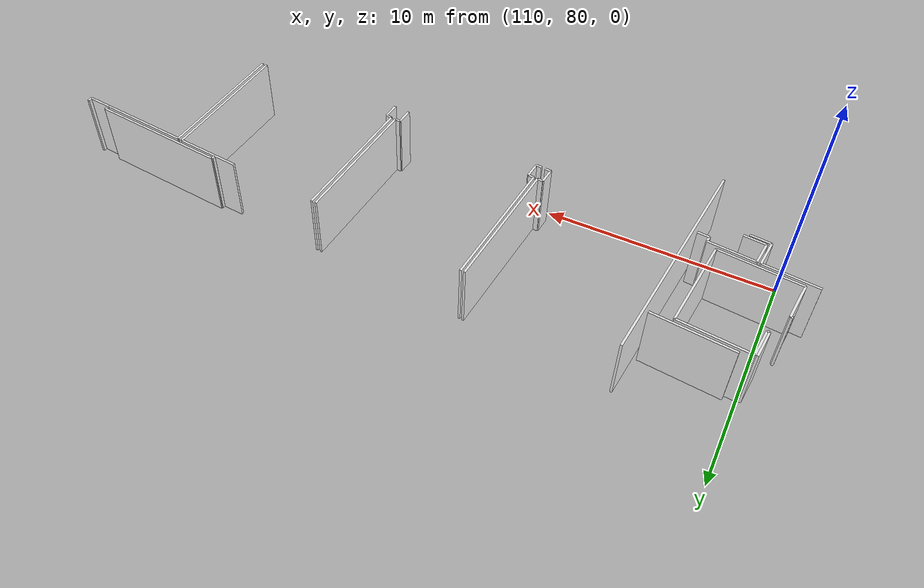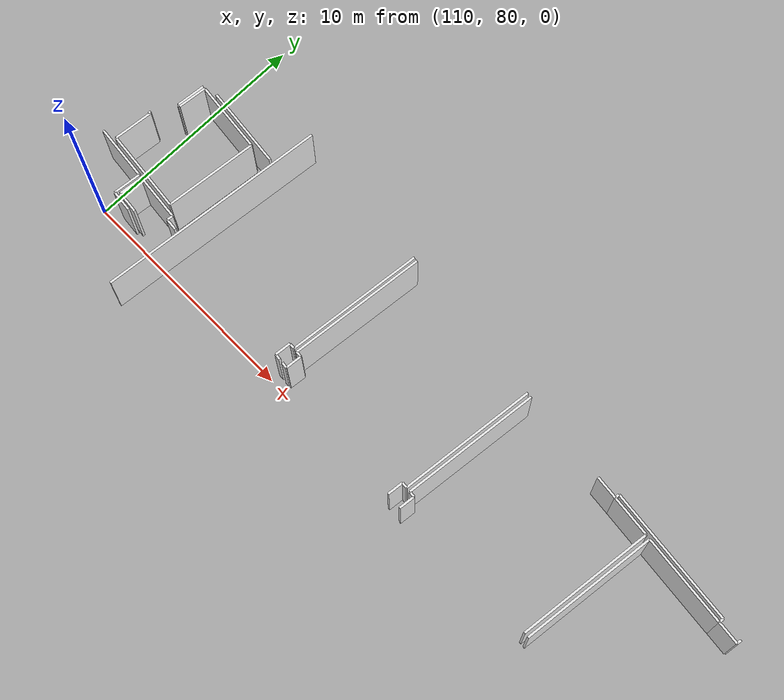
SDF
<sdf version="1.6">
 <world name="default">
  <model name="wall_134.8_82.6_1.5">
   <static>true</static>
   <pose>134.79000000000815 82.63500000000931 1.5 0 0 1.4692789369105257</pose>
   <link name="link">
    <visual name="visual">
     <geometry><box><size>5.920481399479087 0.1 3</size></box></geometry>
     <material>
      <script><uri>file://media/materials/scripts/gazebo.material</uri><name>Gazebo/White</name></script>
     </material>
    </visual>
    <collision name="collision"><geometry><box><size>5.920481399479087 0.1 3</size></box></geometry></collision>
   </link>
  </model>
  <model name="wall_137.1_85.4_1.5">
   <static>true</static>
   <pose>137.07000000000698 85.38000000012107 1.5 0 0 -0.10066865213548881</pose>
   <link name="link">
    <visual name="visual">
     <geometry><box><size>3.9801507508674154 0.1 3</size></box></geometry>
     <material>
      <script><uri>file://media/materials/scripts/gazebo.material</uri><name>Gazebo/White</name></script>
     </material>
    </visual>
    <collision name="collision"><geometry><box><size>3.9801507508674154 0.1 3</size></box></geometry></collision>
   </link>
  </model>
  <model name="wall_139.5_85.1_1.5">
   <static>true</static>
   <pose>139.54999999998836 85.13000000012107 1.5 0 0 -0.09966865258337218</pose>
   <link name="link">
    <visual name="visual">
     <geometry><box><size>1.004987562121356 0.1 3</size></box></geometry>
     <material>
      <script><uri>file://media/materials/scripts/gazebo.material</uri><name>Gazebo/White</name></script>
     </material>
    </visual>
    <collision name="collision"><geometry><box><size>1.004987562121356 0.1 3</size></box></geometry></collision>
   </link>
  </model>
  <model name="wall_134.6_82.7_1.5">
   <static>true</static>
   <pose>134.5800000000163 82.65999999991618 1.5 0 0 1.4694498235315459</pose>
   <link name="link">
    <visual name="visual">
     <geometry><box><size>5.9304300011780855 0.1 3</size></box></geometry>
     <material>
      <script><uri>file://media/materials/scripts/gazebo.material</uri><name>Gazebo/White</name></script>
     </material>
    </visual>
    <collision name="collision"><geometry><box><size>5.9304300011780855 0.1 3</size></box></geometry></collision>
   </link>
  </model>
  <model name="wall_134.0_85.7_1.5">
   <static>true</static>
   <pose>133.98000000001048 85.69999999995343 1.5 0 0 3.0419240010057806</pose>
   <link name="link">
    <visual name="visual">
     <geometry><box><size>1.808977611806857 0.1 3</size></box></geometry>
     <material>
      <script><uri>file://media/materials/scripts/gazebo.material</uri><name>Gazebo/White</name></script>
     </material>
    </visual>
    <collision name="collision"><geometry><box><size>1.808977611806857 0.1 3</size></box></geometry></collision>
   </link>
  </model>
  <model name="wall_132.6_85.8_1.5">
   <static>true</static>
   <pose>132.5800000000163 85.84000000008382 1.5 0 0 3.041924001006421</pose>
   <link name="link">
    <visual name="visual">
     <geometry><box><size>1.004987562121356 0.1 3</size></box></geometry>
     <material>
      <script><uri>file://media/materials/scripts/gazebo.material</uri><name>Gazebo/White</name></script>
     </material>
    </visual>
    <collision name="collision"><geometry><box><size>1.004987562121356 0.1 3</size></box></geometry></collision>
   </link>
  </model>
  <model name="wall_127.8_83.3_1.5">
   <static>true</static>
   <pose>127.79999999998836 83.34499999997206 1.5 0 0 -1.6719725158339418</pose>
   <link name="link">
    <visual name="visual">
     <geometry><box><size>5.940378775484714 0.1 3</size></box></geometry>
     <material>
      <script><uri>file://media/materials/scripts/gazebo.material</uri><name>Gazebo/White</name></script>
     </material>
    </visual>
    <collision name="collision"><geometry><box><size>5.940378775484714 0.1 3</size></box></geometry></collision>
   </link>
  </model>
  <model name="wall_127.6_80.4_1.5">
   <static>true</static>
   <pose>127.625 80.375 1.5 0 0 -0.11942892704661259</pose>
   <link name="link">
    <visual name="visual">
     <geometry><box><size>0.25179356627135296 0.1 3</size></box></geometry>
     <material>
      <script><uri>file://media/materials/scripts/gazebo.material</uri><name>Gazebo/White</name></script>
     </material>
    </visual>
    <collision name="collision"><geometry><box><size>0.25179356627135296 0.1 3</size></box></geometry></collision>
   </link>
  </model>
  <model name="wall_127.7_80.0_1.5">
   <static>true</static>
   <pose>127.71499999999651 80.01499999989755 1.5 0 0 -1.6718996985493473</pose>
   <link name="link">
    <visual name="visual">
     <geometry><box><size>0.693541635321099 0.1 3</size></box></geometry>
     <material>
      <script><uri>file://media/materials/scripts/gazebo.material</uri><name>Gazebo/White</name></script>
     </material>
    </visual>
    <collision name="collision"><geometry><box><size>0.693541635321099 0.1 3</size></box></geometry></collision>
   </link>
  </model>
  <model name="wall_113.3_81.1_1.5">
   <static>true</static>
   <pose>113.2949999999837 81.125 1.5 0 0 3.0438657465945953</pose>
   <link name="link">
    <visual name="visual">
     <geometry><box><size>0.512445119003853 0.1 3</size></box></geometry>
     <material>
      <script><uri>file://media/materials/scripts/gazebo.material</uri><name>Gazebo/White</name></script>
     </material>
    </visual>
    <collision name="collision"><geometry><box><size>0.512445119003853 0.1 3</size></box></geometry></collision>
   </link>
  </model>
  <model name="wall_113.1_81.3_1.5">
   <static>true</static>
   <pose>113.05499999999302 81.27499999990687 1.5 0 0 1.451367400666386</pose>
   <link name="link">
    <visual name="visual">
     <geometry><box><size>0.2517935662436123 0.1 3</size></box></geometry>
     <material>
      <script><uri>file://media/materials/scripts/gazebo.material</uri><name>Gazebo/White</name></script>
     </material>
    </visual>
    <collision name="collision"><geometry><box><size>0.2517935662436123 0.1 3</size></box></geometry></collision>
   </link>
  </model>
  <model name="wall_112.1_81.5_1.5">
   <static>true</static>
   <pose>112.05000000001746 81.5 1.5 0 0 3.04386574613964</pose>
   <link name="link">
    <visual name="visual">
     <geometry><box><size>2.0497804760483525 0.1 3</size></box></geometry>
     <material>
      <script><uri>file://media/materials/scripts/gazebo.material</uri><name>Gazebo/White</name></script>
     </material>
    </visual>
    <collision name="collision"><geometry><box><size>2.0497804760483525 0.1 3</size></box></geometry></collision>
   </link>
  </model>
  <model name="wall_111.0_81.1_1.5">
   <static>true</static>
   <pose>110.97500000000582 81.0800000000745 1.5 0 0 -1.676173766022158</pose>
   <link name="link">
    <visual name="visual">
     <geometry><box><size>1.0458011283639057 0.1 3</size></box></geometry>
     <material>
      <script><uri>file://media/materials/scripts/gazebo.material</uri><name>Gazebo/White</name></script>
     </material>
    </visual>
    <collision name="collision"><geometry><box><size>1.0458011283639057 0.1 3</size></box></geometry></collision>
   </link>
  </model>
  <model name="wall_111.4_80.5_1.5">
   <static>true</static>
   <pose>111.39499999998952 80.51500000013039 1.5 0 0 -0.09445493523843698</pose>
   <link name="link">
    <visual name="visual">
     <geometry><box><size>0.9542536350443193 0.1 3</size></box></geometry>
     <material>
      <script><uri>file://media/materials/scripts/gazebo.material</uri><name>Gazebo/White</name></script>
     </material>
    </visual>
    <collision name="collision"><geometry><box><size>0.9542536350443193 0.1 3</size></box></geometry></collision>
   </link>
  </model>
  <model name="wall_109.7_81.7_1.5">
   <static>true</static>
   <pose>109.6699999999837 81.73999999999069 1.5 0 0 3.041924001199486</pose>
   <link name="link">
    <visual name="visual">
     <geometry><box><size>2.411970149068087 0.1 3</size></box></geometry>
     <material>
      <script><uri>file://media/materials/scripts/gazebo.material</uri><name>Gazebo/White</name></script>
     </material>
    </visual>
    <collision name="collision"><geometry><box><size>2.411970149068087 0.1 3</size></box></geometry></collision>
   </link>
  </model>
  <model name="wall_111.2_80.4_1.5">
   <static>true</static>
   <pose>111.20000000001164 80.38500000000931 1.5 0 0 3.041924000752843</pose>
   <link name="link">
    <visual name="visual">
     <geometry><box><size>0.9044888059555555 0.1 3</size></box></geometry>
     <material>
      <script><uri>file://media/materials/scripts/gazebo.material</uri><name>Gazebo/White</name></script>
     </material>
    </visual>
    <collision name="collision"><geometry><box><size>0.9044888059555555 0.1 3</size></box></geometry></collision>
   </link>
  </model>
  <model name="wall_110.8_81.0_1.5">
   <static>true</static>
   <pose>110.80999999999767 81.0250000001397 1.5 0 0 1.470295727739453</pose>
   <link name="link">
    <visual name="visual">
     <geometry><box><size>1.1960351164852516 0.1 3</size></box></geometry>
     <material>
      <script><uri>file://media/materials/scripts/gazebo.material</uri><name>Gazebo/White</name></script>
     </material>
    </visual>
    <collision name="collision"><geometry><box><size>1.1960351164852516 0.1 3</size></box></geometry></collision>
   </link>
  </model>
  <model name="wall_109.8_85.4_1.5">
   <static>true</static>
   <pose>109.79999999998836 85.36500000022352 1.5 0 0 -1.666503034878009</pose>
   <link name="link">
    <visual name="visual">
     <geometry><box><size>1.2557467897625232 0.1 3</size></box></geometry>
     <material>
      <script><uri>file://media/materials/scripts/gazebo.material</uri><name>Gazebo/White</name></script>
     </material>
    </visual>
    <collision name="collision"><geometry><box><size>1.2557467897625232 0.1 3</size></box></geometry></collision>
   </link>
  </model>
  <model name="wall_109.8_84.7_1.5">
   <static>true</static>
   <pose>109.78500000000349 84.73500000010245 1.5 0 0 -0.11065722380033888</pose>
   <link name="link">
    <visual name="visual">
     <geometry><box><size>0.0905538514335692 0.1 3</size></box></geometry>
     <material>
      <script><uri>file://media/materials/scripts/gazebo.material</uri><name>Gazebo/White</name></script>
     </material>
    </visual>
    <collision name="collision"><geometry><box><size>0.0905538514335692 0.1 3</size></box></geometry></collision>
   </link>
  </model>
  <model name="wall_109.9_85.4_1.5">
   <static>true</static>
   <pose>109.89500000001863 85.35499999998137 1.5 0 0 1.4671688667943394</pose>
   <link name="link">
    <visual name="visual">
     <geometry><box><size>1.2567418191503021 0.1 3</size></box></geometry>
     <material>
      <script><uri>file://media/materials/scripts/gazebo.material</uri><name>Gazebo/White</name></script>
     </material>
    </visual>
    <collision name="collision"><geometry><box><size>1.2567418191503021 0.1 3</size></box></geometry></collision>
   </link>
  </model>
  <model name="wall_111.5_85.8_1.5">
   <static>true</static>
   <pose>111.50500000000466 85.82000000006519 1.5 0 0 -0.10319202030580511</pose>
   <link name="link">
    <visual name="visual">
     <geometry><box><size>3.1065253901571874 0.1 3</size></box></geometry>
     <material>
      <script><uri>file://media/materials/scripts/gazebo.material</uri><name>Gazebo/White</name></script>
     </material>
    </visual>
    <collision name="collision"><geometry><box><size>3.1065253901571874 0.1 3</size></box></geometry></collision>
   </link>
  </model>
  <model name="wall_112.8_83.7_1.5">
   <static>true</static>
   <pose>112.84500000000116 83.65500000002794 1.5 0 0 -1.6726866492791923</pose>
   <link name="link">
    <visual name="visual">
     <geometry><box><size>4.0309056056823005 0.1 3</size></box></geometry>
     <material>
      <script><uri>file://media/materials/scripts/gazebo.material</uri><name>Gazebo/White</name></script>
     </material>
    </visual>
    <collision name="collision"><geometry><box><size>4.0309056056823005 0.1 3</size></box></geometry></collision>
   </link>
  </model>
  <model name="wall_110.9_81.8_1.5">
   <static>true</static>
   <pose>110.85000000000582 81.82999999984168 1.5 0 0 3.041370903846408</pose>
   <link name="link">
    <visual name="visual">
     <geometry><box><size>3.5980550301548777 0.1 3</size></box></geometry>
     <material>
      <script><uri>file://media/materials/scripts/gazebo.material</uri><name>Gazebo/White</name></script>
     </material>
    </visual>
    <collision name="collision"><geometry><box><size>3.5980550301548777 0.1 3</size></box></geometry></collision>
   </link>
  </model>
  <model name="wall_109.1_82.9_1.5">
   <static>true</static>
   <pose>109.14499999998952 82.85499999998137 1.5 0 0 1.470541851323015</pose>
   <link name="link">
    <visual name="visual">
     <geometry><box><size>1.698528775552396 0.1 3</size></box></geometry>
     <material>
      <script><uri>file://media/materials/scripts/gazebo.material</uri><name>Gazebo/White</name></script>
     </material>
    </visual>
    <collision name="collision"><geometry><box><size>1.698528775552396 0.1 3</size></box></geometry></collision>
   </link>
  </model>
  <model name="wall_109.2_83.7_1.5">
   <static>true</static>
   <pose>109.17999999999302 83.7050000000745 1.5 0 0 3.0419240032886226</pose>
   <link name="link">
    <visual name="visual">
     <geometry><box><size>0.10049875616580058 0.1 3</size></box></geometry>
     <material>
      <script><uri>file://media/materials/scripts/gazebo.material</uri><name>Gazebo/White</name></script>
     </material>
    </visual>
    <collision name="collision"><geometry><box><size>0.10049875616580058 0.1 3</size></box></geometry></collision>
   </link>
  </model>
  <model name="wall_112.3_85.9_1.5">
   <static>true</static>
   <pose>112.25500000000466 85.94999999995343 1.5 0 0 3.039961019922028</pose>
   <link name="link">
    <visual name="visual">
     <geometry><box><size>3.548309456643174 0.1 3</size></box></geometry>
     <material>
      <script><uri>file://media/materials/scripts/gazebo.material</uri><name>Gazebo/White</name></script>
     </material>
    </visual>
    <collision name="collision"><geometry><box><size>3.548309456643174 0.1 3</size></box></geometry></collision>
   </link>
  </model>
  <model name="wall_127.0_80.1_1.5">
   <static>true</static>
   <pose>127.02499999999418 80.08500000019558 1.5 0 0 1.469692955040446</pose>
   <link name="link">
    <visual name="visual">
     <geometry><box><size>0.693541635321099 0.1 3</size></box></geometry>
     <material>
      <script><uri>file://media/materials/scripts/gazebo.material</uri><name>Gazebo/White</name></script>
     </material>
    </visual>
    <collision name="collision"><geometry><box><size>0.693541635321099 0.1 3</size></box></geometry></collision>
   </link>
  </model>
  <model name="wall_127.2_80.4_1.5">
   <static>true</static>
   <pose>127.17999999999302 80.42000000015832 1.5 0 0 -0.08314123196872766</pose>
   <link name="link">
    <visual name="visual">
     <geometry><box><size>0.2408318915681117 0.1 3</size></box></geometry>
     <material>
      <script><uri>file://media/materials/scripts/gazebo.material</uri><name>Gazebo/White</name></script>
     </material>
    </visual>
    <collision name="collision"><geometry><box><size>0.2408318915681117 0.1 3</size></box></geometry></collision>
   </link>
  </model>
  <model name="wall_127.6_83.4_1.5">
   <static>true</static>
   <pose>127.60000000000582 83.36499999999069 1.5 0 0 1.469620137746103</pose>
   <link name="link">
    <visual name="visual">
     <geometry><box><size>5.940378775490593 0.1 3</size></box></geometry>
     <material>
      <script><uri>file://media/materials/scripts/gazebo.material</uri><name>Gazebo/White</name></script>
     </material>
    </visual>
    <collision name="collision"><geometry><box><size>5.940378775490593 0.1 3</size></box></geometry></collision>
   </link>
  </model>
  <model name="wall_120.8_84.0_1.5">
   <static>true</static>
   <pose>120.82000000000698 84.0449999999255 1.5 0 0 -1.6719725158260241</pose>
   <link name="link">
    <visual name="visual">
     <geometry><box><size>5.940378775947993 0.1 3</size></box></geometry>
     <material>
      <script><uri>file://media/materials/scripts/gazebo.material</uri><name>Gazebo/White</name></script>
     </material>
    </visual>
    <collision name="collision"><geometry><box><size>5.940378775947993 0.1 3</size></box></geometry></collision>
   </link>
  </model>
  <model name="wall_120.6_81.1_1.5">
   <static>true</static>
   <pose>120.64500000001863 81.07999999984168 1.5 0 0 -0.07982998578626932</pose>
   <link name="link">
    <visual name="visual">
     <geometry><box><size>0.25079872408117443 0.1 3</size></box></geometry>
     <material>
      <script><uri>file://media/materials/scripts/gazebo.material</uri><name>Gazebo/White</name></script>
     </material>
    </visual>
    <collision name="collision"><geometry><box><size>0.25079872408117443 0.1 3</size></box></geometry></collision>
   </link>
  </model>
  <model name="wall_120.7_80.7_1.5">
   <static>true</static>
   <pose>120.73500000001513 80.71999999997206 1.5 0 0 -1.670464979335457</pose>
   <link name="link">
    <visual name="visual">
     <geometry><box><size>0.7034912932011471 0.1 3</size></box></geometry>
     <material>
      <script><uri>file://media/materials/scripts/gazebo.material</uri><name>Gazebo/White</name></script>
     </material>
    </visual>
    <collision name="collision"><geometry><box><size>0.7034912932011471 0.1 3</size></box></geometry></collision>
   </link>
  </model>
  <model name="wall_120.6_80.4_1.5">
   <static>true</static>
   <pose>120.57500000001164 80.38500000000931 1.5 0 0 3.0221637283793843</pose>
   <link name="link">
    <visual name="visual">
     <geometry><box><size>0.2517935662158716 0.1 3</size></box></geometry>
     <material>
      <script><uri>file://media/materials/scripts/gazebo.material</uri><name>Gazebo/White</name></script>
     </material>
    </visual>
    <collision name="collision"><geometry><box><size>0.2517935662158716 0.1 3</size></box></geometry></collision>
   </link>
  </model>
  <model name="wall_120.2_80.4_1.5">
   <static>true</static>
   <pose>120.15500000002794 80.42999999993481 1.5 0 0 3.061762667803524</pose>
   <link name="link">
    <visual name="visual">
     <geometry><box><size>0.25079872408117443 0.1 3</size></box></geometry>
     <material>
      <script><uri>file://media/materials/scripts/gazebo.material</uri><name>Gazebo/White</name></script>
     </material>
    </visual>
    <collision name="collision"><geometry><box><size>0.25079872408117443 0.1 3</size></box></geometry></collision>
   </link>
  </model>
  <model name="wall_120.1_80.8_1.5">
   <static>true</static>
   <pose>120.06500000000233 80.78499999991618 1.5 0 0 1.4696929551239455</pose>
   <link name="link">
    <visual name="visual">
     <geometry><box><size>0.6935416353152241 0.1 3</size></box></geometry>
     <material>
      <script><uri>file://media/materials/scripts/gazebo.material</uri><name>Gazebo/White</name></script>
     </material>
    </visual>
    <collision name="collision"><geometry><box><size>0.6935416353152241 0.1 3</size></box></geometry></collision>
   </link>
  </model>
  <model name="wall_120.2_81.1_1.5">
   <static>true</static>
   <pose>120.22499999997672 81.11999999987893 1.5 0 0 -0.07982998578626932</pose>
   <link name="link">
    <visual name="visual">
     <geometry><box><size>0.25079872408117443 0.1 3</size></box></geometry>
     <material>
      <script><uri>file://media/materials/scripts/gazebo.material</uri><name>Gazebo/White</name></script>
     </material>
    </visual>
    <collision name="collision"><geometry><box><size>0.25079872408117443 0.1 3</size></box></geometry></collision>
   </link>
  </model>
  <model name="wall_120.6_84.1_1.5">
   <static>true</static>
   <pose>120.64999999999418 84.06499999994412 1.5 0 0 1.4696201377540206</pose>
   <link name="link">
    <visual name="visual">
     <geometry><box><size>5.940378775953872 0.1 3</size></box></geometry>
     <material>
      <script><uri>file://media/materials/scripts/gazebo.material</uri><name>Gazebo/White</name></script>
     </material>
    </visual>
    <collision name="collision"><geometry><box><size>5.940378775953872 0.1 3</size></box></geometry></collision>
   </link>
  </model>
  <model name="wall_113.9_82.7_1.5">
   <static>true</static>
   <pose>113.90999999997439 82.73999999999069 1.5 0 0 -1.6716673835126197</pose>
   <link name="link">
    <visual name="visual">
     <geometry><box><size>9.93047833727022 0.1 3</size></box></geometry>
     <material>
      <script><uri>file://media/materials/scripts/gazebo.material</uri><name>Gazebo/White</name></script>
     </material>
    </visual>
    <collision name="collision"><geometry><box><size>9.93047833727022 0.1 3</size></box></geometry></collision>
   </link>
  </model>
  <model name="wall_133.1_85.9_1.5">
   <static>true</static>
   <pose>133.0899999999965 85.88500000000931 1.5 0 0 1.4659193882400832</pose>
   <link name="link">
    <visual name="visual">
     <geometry><box><size>0.19104973168571213 0.1 3</size></box></geometry>
     <material>
      <script><uri>file://media/materials/scripts/gazebo.material</uri><name>Gazebo/White</name></script>
     </material>
    </visual>
    <collision name="collision"><geometry><box><size>0.19104973168571213 0.1 3</size></box></geometry></collision>
   </link>
  </model>
  <model name="wall_136.1_85.7_1.5">
   <static>true</static>
   <pose>136.08499999999185 85.67999999993481 1.5 0 0 -0.1001661649028647</pose>
   <link name="link">
    <visual name="visual">
     <geometry><box><size>6.0000749995706855 0.1 3</size></box></geometry>
     <material>
      <script><uri>file://media/materials/scripts/gazebo.material</uri><name>Gazebo/White</name></script>
     </material>
    </visual>
    <collision name="collision"><geometry><box><size>6.0000749995706855 0.1 3</size></box></geometry></collision>
   </link>
  </model>
  <model name="wall_139.1_85.3_1.5">
   <static>true</static>
   <pose>139.05999999999767 85.28000000002794 1.5 0 0 -1.670464979516584</pose>
   <link name="link">
    <visual name="visual">
     <geometry><box><size>0.20099751214626105 0.1 3</size></box></geometry>
     <material>
      <script><uri>file://media/materials/scripts/gazebo.material</uri><name>Gazebo/White</name></script>
     </material>
    </visual>
    <collision name="collision"><geometry><box><size>0.20099751214626105 0.1 3</size></box></geometry></collision>
   </link>
  </model>
  <model name="wall_140.1_85.2_1.5">
   <static>true</static>
   <pose>140.05999999999767 85.17999999993481 1.5 0 0 1.471127674073209</pose>
   <link name="link">
    <visual name="visual">
     <geometry><box><size>0.20099751214626105 0.1 3</size></box></geometry>
     <material>
      <script><uri>file://media/materials/scripts/gazebo.material</uri><name>Gazebo/White</name></script>
     </material>
    </visual>
    <collision name="collision"><geometry><box><size>0.20099751214626105 0.1 3</size></box></geometry></collision>
   </link>
  </model>
 </world>
</sdf>
